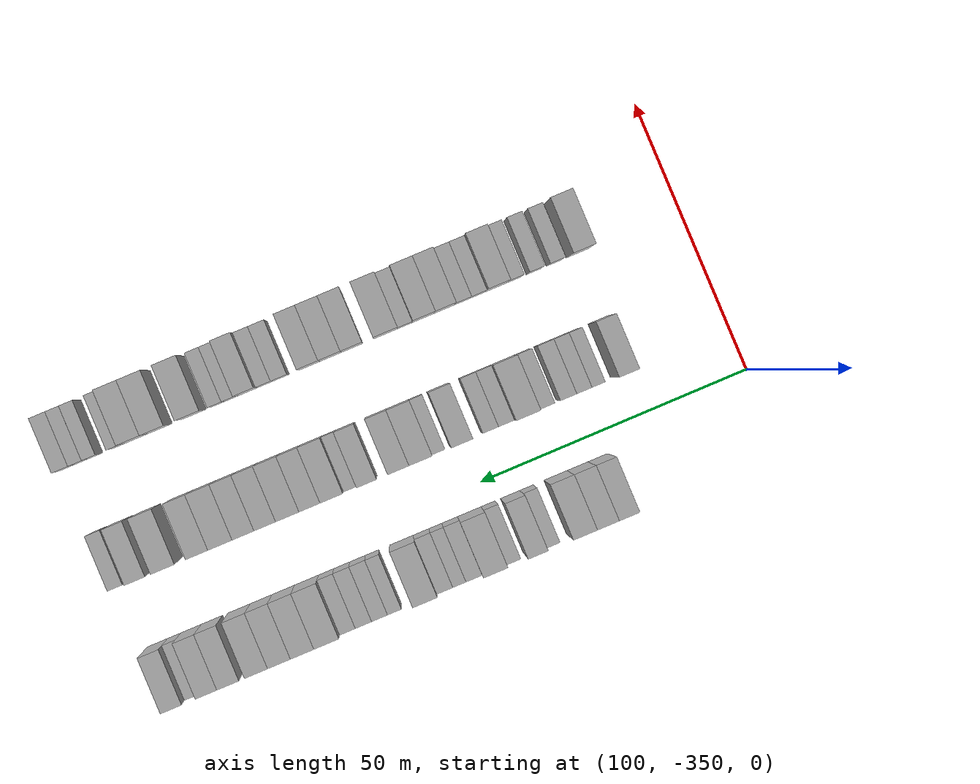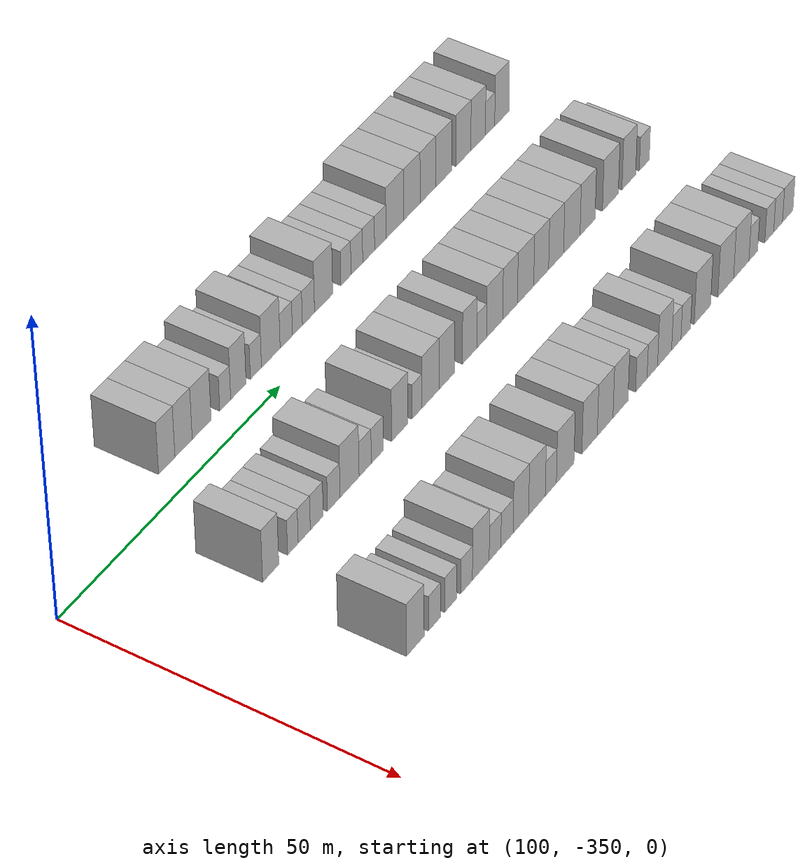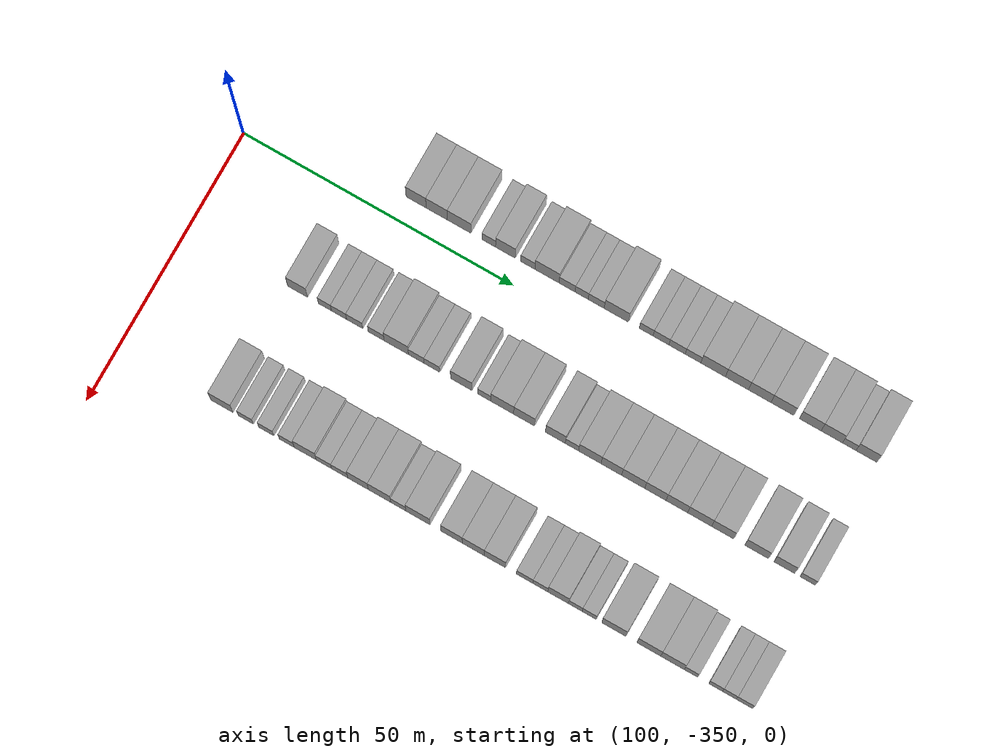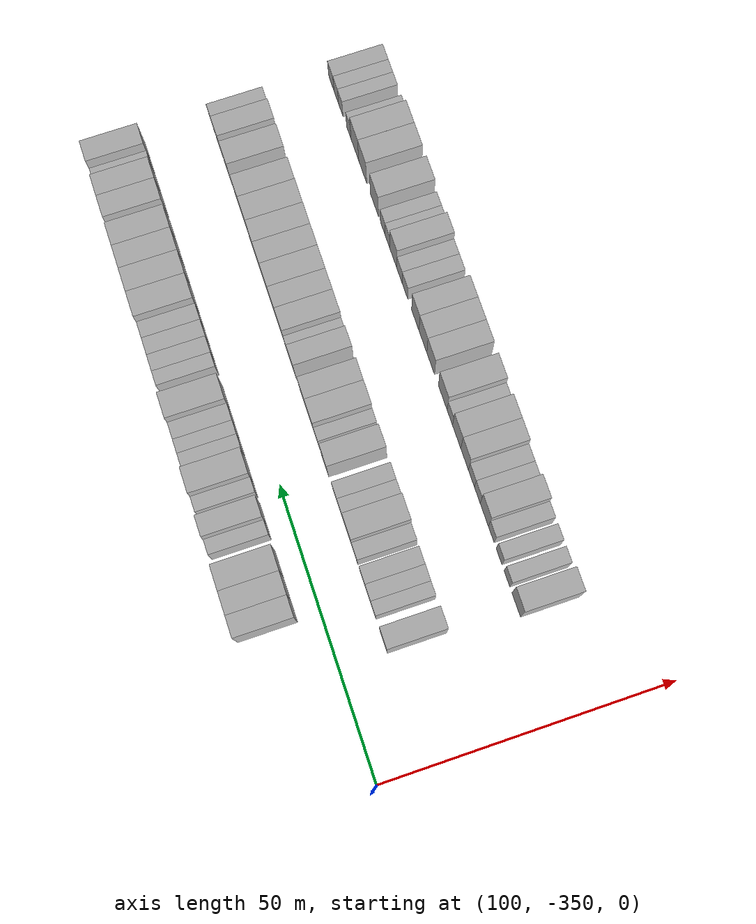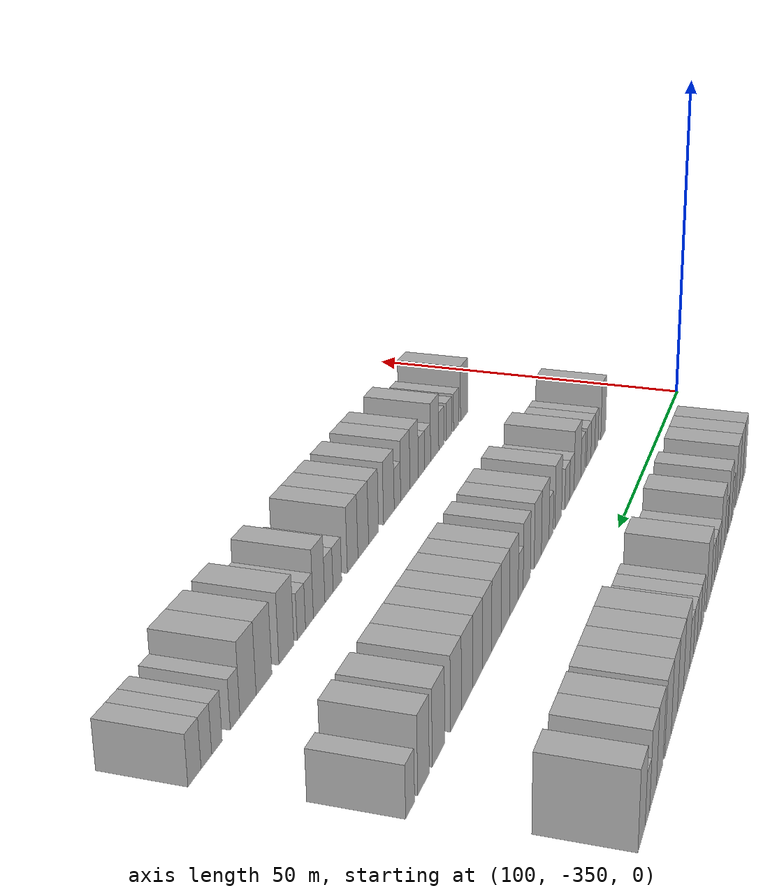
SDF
<sdf version="1.6">
 <world name="default">
  <model name="building_559">
   <static>1</static>
   <pose>91.0000 -320.2926 0 0.000000 0.000000 0.000000</pose>
   <link name="link">
    <pose>0 0 4.50 0 0 0</pose>
    <collision name="collision"><geometry><box><size>10.0000 3.7072 9.0000</size></box></geometry></collision>
    <visual name="visual">
     <cast_shadows>0</cast_shadows>
     <geometry><box><size>10.0000 3.7072 9.0000</size></box></geometry>
     <material>
      <script>
       <uri>model://HANNAS_wall/materials/scripts</uri>
       <uri>model://HANNAS_wall/materials/textures</uri>
       <name>vrc/HANNAS_wall</name>
      </script>
     </material>
    </visual>
   </link>
  </model>
  <model name="building_560">
   <static>1</static>
   <pose>91.0000 -316.4711 0 0.000000 0.000000 0.000000</pose>
   <link name="link">
    <pose>0 0 4.50 0 0 0</pose>
    <collision name="collision"><geometry><box><size>10.0000 3.9356 9.0000</size></box></geometry></collision>
    <visual name="visual">
     <cast_shadows>0</cast_shadows>
     <geometry><box><size>10.0000 3.9356 9.0000</size></box></geometry>
     <material>
      <script>
       <uri>model://HANNAS_wall/materials/scripts</uri>
       <uri>model://HANNAS_wall/materials/textures</uri>
       <name>vrc/HANNAS_wall</name>
      </script>
     </material>
    </visual>
   </link>
  </model>
  <model name="building_561">
   <static>1</static>
   <pose>91.0000 -312.3333 0 0.000000 0.000000 0.000000</pose>
   <link name="link">
    <pose>0 0 4.50 0 0 0</pose>
    <collision name="collision"><geometry><box><size>10.0000 4.3401 9.0000</size></box></geometry></collision>
    <visual name="visual">
     <cast_shadows>0</cast_shadows>
     <geometry><box><size>10.0000 4.3401 9.0000</size></box></geometry>
     <material>
      <script>
       <uri>model://HANNAS_wall/materials/scripts</uri>
       <uri>model://HANNAS_wall/materials/textures</uri>
       <name>vrc/HANNAS_wall</name>
      </script>
     </material>
    </visual>
   </link>
  </model>
  <model name="building_562">
   <static>1</static>
   <pose>91.0000 -306.8927 0 0.000000 0.000000 0.000000</pose>
   <link name="link">
    <pose>0 0 3.00 0 0 0</pose>
    <collision name="collision"><geometry><box><size>10.0000 2.5411 6.0000</size></box></geometry></collision>
    <visual name="visual">
     <cast_shadows>0</cast_shadows>
     <geometry><box><size>10.0000 2.5411 6.0000</size></box></geometry>
     <material>
      <script>
       <uri>model://HANNAS_wall/materials/scripts</uri>
       <uri>model://HANNAS_wall/materials/textures</uri>
       <name>vrc/HANNAS_wall</name>
      </script>
     </material>
    </visual>
   </link>
  </model>
  <model name="building_563">
   <static>1</static>
   <pose>91.0000 -303.8097 0 0.000000 0.000000 0.000000</pose>
   <link name="link">
    <pose>0 0 4.50 0 0 0</pose>
    <collision name="collision"><geometry><box><size>10.0000 3.6249 9.0000</size></box></geometry></collision>
    <visual name="visual">
     <cast_shadows>0</cast_shadows>
     <geometry><box><size>10.0000 3.6249 9.0000</size></box></geometry>
     <material>
      <script>
       <uri>model://HANNAS_wall/materials/scripts</uri>
       <uri>model://HANNAS_wall/materials/textures</uri>
       <name>vrc/HANNAS_wall</name>
      </script>
     </material>
    </visual>
   </link>
  </model>
  <model name="building_564">
   <static>1</static>
   <pose>91.0000 -299.6815 0 0.000000 0.000000 0.000000</pose>
   <link name="link">
    <pose>0 0 3.00 0 0 0</pose>
    <collision name="collision"><geometry><box><size>10.0000 2.6316 6.0000</size></box></geometry></collision>
    <visual name="visual">
     <cast_shadows>0</cast_shadows>
     <geometry><box><size>10.0000 2.6316 6.0000</size></box></geometry>
     <material>
      <script>
       <uri>model://HANNAS_wall/materials/scripts</uri>
       <uri>model://HANNAS_wall/materials/textures</uri>
       <name>vrc/HANNAS_wall</name>
      </script>
     </material>
    </visual>
   </link>
  </model>
  <model name="building_565">
   <static>1</static>
   <pose>91.0000 -296.1436 0 0.000000 0.000000 0.000000</pose>
   <link name="link">
    <pose>0 0 4.50 0 0 0</pose>
    <collision name="collision"><geometry><box><size>10.0000 4.4441 9.0000</size></box></geometry></collision>
    <visual name="visual">
     <cast_shadows>0</cast_shadows>
     <geometry><box><size>10.0000 4.4441 9.0000</size></box></geometry>
     <material>
      <script>
       <uri>model://HANNAS_wall/materials/scripts</uri>
       <uri>model://HANNAS_wall/materials/textures</uri>
       <name>vrc/HANNAS_wall</name>
      </script>
     </material>
    </visual>
   </link>
  </model>
  <model name="building_566">
   <static>1</static>
   <pose>91.0000 -292.4421 0 0.000000 0.000000 0.000000</pose>
   <link name="link">
    <pose>0 0 3.00 0 0 0</pose>
    <collision name="collision"><geometry><box><size>10.0000 2.9590 6.0000</size></box></geometry></collision>
    <visual name="visual">
     <cast_shadows>0</cast_shadows>
     <geometry><box><size>10.0000 2.9590 6.0000</size></box></geometry>
     <material>
      <script>
       <uri>model://HANNAS_wall/materials/scripts</uri>
       <uri>model://HANNAS_wall/materials/textures</uri>
       <name>vrc/HANNAS_wall</name>
      </script>
     </material>
    </visual>
   </link>
  </model>
  <model name="building_567">
   <static>1</static>
   <pose>91.0000 -289.7592 0 0.000000 0.000000 0.000000</pose>
   <link name="link">
    <pose>0 0 3.00 0 0 0</pose>
    <collision name="collision"><geometry><box><size>10.0000 2.4067 6.0000</size></box></geometry></collision>
    <visual name="visual">
     <cast_shadows>0</cast_shadows>
     <geometry><box><size>10.0000 2.4067 6.0000</size></box></geometry>
     <material>
      <script>
       <uri>model://HANNAS_wall/materials/scripts</uri>
       <uri>model://HANNAS_wall/materials/textures</uri>
       <name>vrc/HANNAS_wall</name>
      </script>
     </material>
    </visual>
   </link>
  </model>
  <model name="building_568">
   <static>1</static>
   <pose>91.0000 -287.0844 0 0.000000 0.000000 0.000000</pose>
   <link name="link">
    <pose>0 0 3.00 0 0 0</pose>
    <collision name="collision"><geometry><box><size>10.0000 2.9431 6.0000</size></box></geometry></collision>
    <visual name="visual">
     <cast_shadows>0</cast_shadows>
     <geometry><box><size>10.0000 2.9431 6.0000</size></box></geometry>
     <material>
      <script>
       <uri>model://HANNAS_wall/materials/scripts</uri>
       <uri>model://HANNAS_wall/materials/textures</uri>
       <name>vrc/HANNAS_wall</name>
      </script>
     </material>
    </visual>
   </link>
  </model>
  <model name="building_569">
   <static>1</static>
   <pose>91.0000 -283.3827 0 0.000000 0.000000 0.000000</pose>
   <link name="link">
    <pose>0 0 4.50 0 0 0</pose>
    <collision name="collision"><geometry><box><size>10.0000 4.4601 9.0000</size></box></geometry></collision>
    <visual name="visual">
     <cast_shadows>0</cast_shadows>
     <geometry><box><size>10.0000 4.4601 9.0000</size></box></geometry>
     <material>
      <script>
       <uri>model://HANNAS_wall/materials/scripts</uri>
       <uri>model://HANNAS_wall/materials/textures</uri>
       <name>vrc/HANNAS_wall</name>
      </script>
     </material>
    </visual>
   </link>
  </model>
  <model name="building_570">
   <static>1</static>
   <pose>91.0000 -277.8839 0 0.000000 0.000000 0.000000</pose>
   <link name="link">
    <pose>0 0 3.00 0 0 0</pose>
    <collision name="collision"><geometry><box><size>10.0000 2.5376 6.0000</size></box></geometry></collision>
    <visual name="visual">
     <cast_shadows>0</cast_shadows>
     <geometry><box><size>10.0000 2.5376 6.0000</size></box></geometry>
     <material>
      <script>
       <uri>model://HANNAS_wall/materials/scripts</uri>
       <uri>model://HANNAS_wall/materials/textures</uri>
       <name>vrc/HANNAS_wall</name>
      </script>
     </material>
    </visual>
   </link>
  </model>
  <model name="building_571">
   <static>1</static>
   <pose>91.0000 -275.1615 0 0.000000 0.000000 0.000000</pose>
   <link name="link">
    <pose>0 0 3.00 0 0 0</pose>
    <collision name="collision"><geometry><box><size>10.0000 2.9071 6.0000</size></box></geometry></collision>
    <visual name="visual">
     <cast_shadows>0</cast_shadows>
     <geometry><box><size>10.0000 2.9071 6.0000</size></box></geometry>
     <material>
      <script>
       <uri>model://HANNAS_wall/materials/scripts</uri>
       <uri>model://HANNAS_wall/materials/textures</uri>
       <name>vrc/HANNAS_wall</name>
      </script>
     </material>
    </visual>
   </link>
  </model>
  <model name="building_572">
   <static>1</static>
   <pose>91.0000 -272.2147 0 0.000000 0.000000 0.000000</pose>
   <link name="link">
    <pose>0 0 3.00 0 0 0</pose>
    <collision name="collision"><geometry><box><size>10.0000 2.9865 6.0000</size></box></geometry></collision>
    <visual name="visual">
     <cast_shadows>0</cast_shadows>
     <geometry><box><size>10.0000 2.9865 6.0000</size></box></geometry>
     <material>
      <script>
       <uri>model://HANNAS_wall/materials/scripts</uri>
       <uri>model://HANNAS_wall/materials/textures</uri>
       <name>vrc/HANNAS_wall</name>
      </script>
     </material>
    </visual>
   </link>
  </model>
  <model name="building_573">
   <static>1</static>
   <pose>91.0000 -269.2798 0 0.000000 0.000000 0.000000</pose>
   <link name="link">
    <pose>0 0 3.00 0 0 0</pose>
    <collision name="collision"><geometry><box><size>10.0000 2.8832 6.0000</size></box></geometry></collision>
    <visual name="visual">
     <cast_shadows>0</cast_shadows>
     <geometry><box><size>10.0000 2.8832 6.0000</size></box></geometry>
     <material>
      <script>
       <uri>model://HANNAS_wall/materials/scripts</uri>
       <uri>model://HANNAS_wall/materials/textures</uri>
       <name>vrc/HANNAS_wall</name>
      </script>
     </material>
    </visual>
   </link>
  </model>
  <model name="building_574">
   <static>1</static>
   <pose>91.0000 -265.5908 0 0.000000 0.000000 0.000000</pose>
   <link name="link">
    <pose>0 0 4.50 0 0 0</pose>
    <collision name="collision"><geometry><box><size>10.0000 4.4948 9.0000</size></box></geometry></collision>
    <visual name="visual">
     <cast_shadows>0</cast_shadows>
     <geometry><box><size>10.0000 4.4948 9.0000</size></box></geometry>
     <material>
      <script>
       <uri>model://HANNAS_wall/materials/scripts</uri>
       <uri>model://HANNAS_wall/materials/textures</uri>
       <name>vrc/HANNAS_wall</name>
      </script>
     </material>
    </visual>
   </link>
  </model>
  <model name="building_575">
   <static>1</static>
   <pose>91.0000 -261.2295 0 0.000000 0.000000 0.000000</pose>
   <link name="link">
    <pose>0 0 4.50 0 0 0</pose>
    <collision name="collision"><geometry><box><size>10.0000 4.2278 9.0000</size></box></geometry></collision>
    <visual name="visual">
     <cast_shadows>0</cast_shadows>
     <geometry><box><size>10.0000 4.2278 9.0000</size></box></geometry>
     <material>
      <script>
       <uri>model://HANNAS_wall/materials/scripts</uri>
       <uri>model://HANNAS_wall/materials/textures</uri>
       <name>vrc/HANNAS_wall</name>
      </script>
     </material>
    </visual>
   </link>
  </model>
  <model name="building_576">
   <static>1</static>
   <pose>91.0000 -257.0610 0 0.000000 0.000000 0.000000</pose>
   <link name="link">
    <pose>0 0 4.50 0 0 0</pose>
    <collision name="collision"><geometry><box><size>10.0000 4.1092 9.0000</size></box></geometry></collision>
    <visual name="visual">
     <cast_shadows>0</cast_shadows>
     <geometry><box><size>10.0000 4.1092 9.0000</size></box></geometry>
     <material>
      <script>
       <uri>model://HANNAS_wall/materials/scripts</uri>
       <uri>model://HANNAS_wall/materials/textures</uri>
       <name>vrc/HANNAS_wall</name>
      </script>
     </material>
    </visual>
   </link>
  </model>
  <model name="building_577">
   <static>1</static>
   <pose>91.0000 -252.9128 0 0.000000 0.000000 0.000000</pose>
   <link name="link">
    <pose>0 0 4.50 0 0 0</pose>
    <collision name="collision"><geometry><box><size>10.0000 4.1872 9.0000</size></box></geometry></collision>
    <visual name="visual">
     <cast_shadows>0</cast_shadows>
     <geometry><box><size>10.0000 4.1872 9.0000</size></box></geometry>
     <material>
      <script>
       <uri>model://HANNAS_wall/materials/scripts</uri>
       <uri>model://HANNAS_wall/materials/textures</uri>
       <name>vrc/HANNAS_wall</name>
      </script>
     </material>
    </visual>
   </link>
  </model>
  <model name="building_578">
   <static>1</static>
   <pose>91.0000 -247.8336 0 0.000000 0.000000 0.000000</pose>
   <link name="link">
    <pose>0 0 4.50 0 0 0</pose>
    <collision name="collision"><geometry><box><size>10.0000 3.9711 9.0000</size></box></geometry></collision>
    <visual name="visual">
     <cast_shadows>0</cast_shadows>
     <geometry><box><size>10.0000 3.9711 9.0000</size></box></geometry>
     <material>
      <script>
       <uri>model://HANNAS_wall/materials/scripts</uri>
       <uri>model://HANNAS_wall/materials/textures</uri>
       <name>vrc/HANNAS_wall</name>
      </script>
     </material>
    </visual>
   </link>
  </model>
  <model name="building_579">
   <static>1</static>
   <pose>91.0000 -243.9036 0 0.000000 0.000000 0.000000</pose>
   <link name="link">
    <pose>0 0 4.50 0 0 0</pose>
    <collision name="collision"><geometry><box><size>10.0000 3.8889 9.0000</size></box></geometry></collision>
    <visual name="visual">
     <cast_shadows>0</cast_shadows>
     <geometry><box><size>10.0000 3.8889 9.0000</size></box></geometry>
     <material>
      <script>
       <uri>model://HANNAS_wall/materials/scripts</uri>
       <uri>model://HANNAS_wall/materials/textures</uri>
       <name>vrc/HANNAS_wall</name>
      </script>
     </material>
    </visual>
   </link>
  </model>
  <model name="building_580">
   <static>1</static>
   <pose>91.0000 -240.7203 0 0.000000 0.000000 0.000000</pose>
   <link name="link">
    <pose>0 0 3.00 0 0 0</pose>
    <collision name="collision"><geometry><box><size>10.0000 2.4777 6.0000</size></box></geometry></collision>
    <visual name="visual">
     <cast_shadows>0</cast_shadows>
     <geometry><box><size>10.0000 2.4777 6.0000</size></box></geometry>
     <material>
      <script>
       <uri>model://HANNAS_wall/materials/scripts</uri>
       <uri>model://HANNAS_wall/materials/textures</uri>
       <name>vrc/HANNAS_wall</name>
      </script>
     </material>
    </visual>
   </link>
  </model>
  <model name="building_581">
   <static>1</static>
   <pose>91.0000 -237.5704 0 0.000000 0.000000 0.000000</pose>
   <link name="link">
    <pose>0 0 4.50 0 0 0</pose>
    <collision name="collision"><geometry><box><size>10.0000 3.8223 9.0000</size></box></geometry></collision>
    <visual name="visual">
     <cast_shadows>0</cast_shadows>
     <geometry><box><size>10.0000 3.8223 9.0000</size></box></geometry>
     <material>
      <script>
       <uri>model://HANNAS_wall/materials/scripts</uri>
       <uri>model://HANNAS_wall/materials/textures</uri>
       <name>vrc/HANNAS_wall</name>
      </script>
     </material>
    </visual>
   </link>
  </model>
  <model name="building_744">
   <static>1</static>
   <pose>113.0000 -329.5318 0 0.000000 0.000000 0.000000</pose>
   <link name="link">
    <pose>0 0 4.50 0 0 0</pose>
    <collision name="collision"><geometry><box><size>10.0000 3.6699 9.0000</size></box></geometry></collision>
    <visual name="visual">
     <cast_shadows>0</cast_shadows>
     <geometry><box><size>10.0000 3.6699 9.0000</size></box></geometry>
     <material>
      <script>
       <uri>model://HANNAS_wall/materials/scripts</uri>
       <uri>model://HANNAS_wall/materials/textures</uri>
       <name>vrc/HANNAS_wall</name>
      </script>
     </material>
    </visual>
   </link>
  </model>
  <model name="building_745">
   <static>1</static>
   <pose>113.0000 -324.4861 0 0.000000 0.000000 0.000000</pose>
   <link name="link">
    <pose>0 0 3.00 0 0 0</pose>
    <collision name="collision"><geometry><box><size>10.0000 2.4213 6.0000</size></box></geometry></collision>
    <visual name="visual">
     <cast_shadows>0</cast_shadows>
     <geometry><box><size>10.0000 2.4213 6.0000</size></box></geometry>
     <material>
      <script>
       <uri>model://HANNAS_wall/materials/scripts</uri>
       <uri>model://HANNAS_wall/materials/textures</uri>
       <name>vrc/HANNAS_wall</name>
      </script>
     </material>
    </visual>
   </link>
  </model>
  <model name="building_746">
   <static>1</static>
   <pose>113.0000 -321.8822 0 0.000000 0.000000 0.000000</pose>
   <link name="link">
    <pose>0 0 3.00 0 0 0</pose>
    <collision name="collision"><geometry><box><size>10.0000 2.7865 6.0000</size></box></geometry></collision>
    <visual name="visual">
     <cast_shadows>0</cast_shadows>
     <geometry><box><size>10.0000 2.7865 6.0000</size></box></geometry>
     <material>
      <script>
       <uri>model://HANNAS_wall/materials/scripts</uri>
       <uri>model://HANNAS_wall/materials/textures</uri>
       <name>vrc/HANNAS_wall</name>
      </script>
     </material>
    </visual>
   </link>
  </model>
  <model name="building_747">
   <static>1</static>
   <pose>113.0000 -318.9895 0 0.000000 0.000000 0.000000</pose>
   <link name="link">
    <pose>0 0 3.00 0 0 0</pose>
    <collision name="collision"><geometry><box><size>10.0000 2.9990 6.0000</size></box></geometry></collision>
    <visual name="visual">
     <cast_shadows>0</cast_shadows>
     <geometry><box><size>10.0000 2.9990 6.0000</size></box></geometry>
     <material>
      <script>
       <uri>model://HANNAS_wall/materials/scripts</uri>
       <uri>model://HANNAS_wall/materials/textures</uri>
       <name>vrc/HANNAS_wall</name>
      </script>
     </material>
    </visual>
   </link>
  </model>
  <model name="building_748">
   <static>1</static>
   <pose>113.0000 -315.0239 0 0.000000 0.000000 0.000000</pose>
   <link name="link">
    <pose>0 0 3.00 0 0 0</pose>
    <collision name="collision"><geometry><box><size>10.0000 2.9321 6.0000</size></box></geometry></collision>
    <visual name="visual">
     <cast_shadows>0</cast_shadows>
     <geometry><box><size>10.0000 2.9321 6.0000</size></box></geometry>
     <material>
      <script>
       <uri>model://HANNAS_wall/materials/scripts</uri>
       <uri>model://HANNAS_wall/materials/textures</uri>
       <name>vrc/HANNAS_wall</name>
      </script>
     </material>
    </visual>
   </link>
  </model>
  <model name="building_749">
   <static>1</static>
   <pose>113.0000 -311.3188 0 0.000000 0.000000 0.000000</pose>
   <link name="link">
    <pose>0 0 4.50 0 0 0</pose>
    <collision name="collision"><geometry><box><size>10.0000 4.4782 9.0000</size></box></geometry></collision>
    <visual name="visual">
     <cast_shadows>0</cast_shadows>
     <geometry><box><size>10.0000 4.4782 9.0000</size></box></geometry>
     <material>
      <script>
       <uri>model://HANNAS_wall/materials/scripts</uri>
       <uri>model://HANNAS_wall/materials/textures</uri>
       <name>vrc/HANNAS_wall</name>
      </script>
     </material>
    </visual>
   </link>
  </model>
  <model name="building_750">
   <static>1</static>
   <pose>113.0000 -307.6282 0 0.000000 0.000000 0.000000</pose>
   <link name="link">
    <pose>0 0 3.00 0 0 0</pose>
    <collision name="collision"><geometry><box><size>10.0000 2.9029 6.0000</size></box></geometry></collision>
    <visual name="visual">
     <cast_shadows>0</cast_shadows>
     <geometry><box><size>10.0000 2.9029 6.0000</size></box></geometry>
     <material>
      <script>
       <uri>model://HANNAS_wall/materials/scripts</uri>
       <uri>model://HANNAS_wall/materials/textures</uri>
       <name>vrc/HANNAS_wall</name>
      </script>
     </material>
    </visual>
   </link>
  </model>
  <model name="building_751">
   <static>1</static>
   <pose>113.0000 -304.7395 0 0.000000 0.000000 0.000000</pose>
   <link name="link">
    <pose>0 0 3.00 0 0 0</pose>
    <collision name="collision"><geometry><box><size>10.0000 2.8746 6.0000</size></box></geometry></collision>
    <visual name="visual">
     <cast_shadows>0</cast_shadows>
     <geometry><box><size>10.0000 2.8746 6.0000</size></box></geometry>
     <material>
      <script>
       <uri>model://HANNAS_wall/materials/scripts</uri>
       <uri>model://HANNAS_wall/materials/textures</uri>
       <name>vrc/HANNAS_wall</name>
      </script>
     </material>
    </visual>
   </link>
  </model>
  <model name="building_752">
   <static>1</static>
   <pose>113.0000 -299.3362 0 0.000000 0.000000 0.000000</pose>
   <link name="link">
    <pose>0 0 4.50 0 0 0</pose>
    <collision name="collision"><geometry><box><size>10.0000 3.9321 9.0000</size></box></geometry></collision>
    <visual name="visual">
     <cast_shadows>0</cast_shadows>
     <geometry><box><size>10.0000 3.9321 9.0000</size></box></geometry>
     <material>
      <script>
       <uri>model://HANNAS_wall/materials/scripts</uri>
       <uri>model://HANNAS_wall/materials/textures</uri>
       <name>vrc/HANNAS_wall</name>
      </script>
     </material>
    </visual>
   </link>
  </model>
  <model name="building_753">
   <static>1</static>
   <pose>113.0000 -295.1657 0 0.000000 0.000000 0.000000</pose>
   <link name="link">
    <pose>0 0 3.00 0 0 0</pose>
    <collision name="collision"><geometry><box><size>10.0000 2.4090 6.0000</size></box></geometry></collision>
    <visual name="visual">
     <cast_shadows>0</cast_shadows>
     <geometry><box><size>10.0000 2.4090 6.0000</size></box></geometry>
     <material>
      <script>
       <uri>model://HANNAS_wall/materials/scripts</uri>
       <uri>model://HANNAS_wall/materials/textures</uri>
       <name>vrc/HANNAS_wall</name>
      </script>
     </material>
    </visual>
   </link>
  </model>
  <model name="building_754">
   <static>1</static>
   <pose>113.0000 -291.8523 0 0.000000 0.000000 0.000000</pose>
   <link name="link">
    <pose>0 0 4.50 0 0 0</pose>
    <collision name="collision"><geometry><box><size>10.0000 4.2177 9.0000</size></box></geometry></collision>
    <visual name="visual">
     <cast_shadows>0</cast_shadows>
     <geometry><box><size>10.0000 4.2177 9.0000</size></box></geometry>
     <material>
      <script>
       <uri>model://HANNAS_wall/materials/scripts</uri>
       <uri>model://HANNAS_wall/materials/textures</uri>
       <name>vrc/HANNAS_wall</name>
      </script>
     </material>
    </visual>
   </link>
  </model>
  <model name="building_755">
   <static>1</static>
   <pose>113.0000 -287.8174 0 0.000000 0.000000 0.000000</pose>
   <link name="link">
    <pose>0 0 4.50 0 0 0</pose>
    <collision name="collision"><geometry><box><size>10.0000 3.8520 9.0000</size></box></geometry></collision>
    <visual name="visual">
     <cast_shadows>0</cast_shadows>
     <geometry><box><size>10.0000 3.8520 9.0000</size></box></geometry>
     <material>
      <script>
       <uri>model://HANNAS_wall/materials/scripts</uri>
       <uri>model://HANNAS_wall/materials/textures</uri>
       <name>vrc/HANNAS_wall</name>
      </script>
     </material>
    </visual>
   </link>
  </model>
  <model name="building_756">
   <static>1</static>
   <pose>113.0000 -282.0751 0 0.000000 0.000000 0.000000</pose>
   <link name="link">
    <pose>0 0 4.50 0 0 0</pose>
    <collision name="collision"><geometry><box><size>10.0000 3.6327 9.0000</size></box></geometry></collision>
    <visual name="visual">
     <cast_shadows>0</cast_shadows>
     <geometry><box><size>10.0000 3.6327 9.0000</size></box></geometry>
     <material>
      <script>
       <uri>model://HANNAS_wall/materials/scripts</uri>
       <uri>model://HANNAS_wall/materials/textures</uri>
       <name>vrc/HANNAS_wall</name>
      </script>
     </material>
    </visual>
   </link>
  </model>
  <model name="building_757">
   <static>1</static>
   <pose>113.0000 -279.0368 0 0.000000 0.000000 0.000000</pose>
   <link name="link">
    <pose>0 0 3.00 0 0 0</pose>
    <collision name="collision"><geometry><box><size>10.0000 2.4439 6.0000</size></box></geometry></collision>
    <visual name="visual">
     <cast_shadows>0</cast_shadows>
     <geometry><box><size>10.0000 2.4439 6.0000</size></box></geometry>
     <material>
      <script>
       <uri>model://HANNAS_wall/materials/scripts</uri>
       <uri>model://HANNAS_wall/materials/textures</uri>
       <name>vrc/HANNAS_wall</name>
      </script>
     </material>
    </visual>
   </link>
  </model>
  <model name="building_758">
   <static>1</static>
   <pose>113.0000 -275.7574 0 0.000000 0.000000 0.000000</pose>
   <link name="link">
    <pose>0 0 4.50 0 0 0</pose>
    <collision name="collision"><geometry><box><size>10.0000 4.1149 9.0000</size></box></geometry></collision>
    <visual name="visual">
     <cast_shadows>0</cast_shadows>
     <geometry><box><size>10.0000 4.1149 9.0000</size></box></geometry>
     <material>
      <script>
       <uri>model://HANNAS_wall/materials/scripts</uri>
       <uri>model://HANNAS_wall/materials/textures</uri>
       <name>vrc/HANNAS_wall</name>
      </script>
     </material>
    </visual>
   </link>
  </model>
  <model name="building_759">
   <static>1</static>
   <pose>113.0000 -271.8102 0 0.000000 0.000000 0.000000</pose>
   <link name="link">
    <pose>0 0 4.50 0 0 0</pose>
    <collision name="collision"><geometry><box><size>10.0000 3.7796 9.0000</size></box></geometry></collision>
    <visual name="visual">
     <cast_shadows>0</cast_shadows>
     <geometry><box><size>10.0000 3.7796 9.0000</size></box></geometry>
     <material>
      <script>
       <uri>model://HANNAS_wall/materials/scripts</uri>
       <uri>model://HANNAS_wall/materials/textures</uri>
       <name>vrc/HANNAS_wall</name>
      </script>
     </material>
    </visual>
   </link>
  </model>
  <model name="building_760">
   <static>1</static>
   <pose>113.0000 -267.8088 0 0.000000 0.000000 0.000000</pose>
   <link name="link">
    <pose>0 0 4.50 0 0 0</pose>
    <collision name="collision"><geometry><box><size>10.0000 4.2232 9.0000</size></box></geometry></collision>
    <visual name="visual">
     <cast_shadows>0</cast_shadows>
     <geometry><box><size>10.0000 4.2232 9.0000</size></box></geometry>
     <material>
      <script>
       <uri>model://HANNAS_wall/materials/scripts</uri>
       <uri>model://HANNAS_wall/materials/textures</uri>
       <name>vrc/HANNAS_wall</name>
      </script>
     </material>
    </visual>
   </link>
  </model>
  <model name="building_761">
   <static>1</static>
   <pose>113.0000 -263.7494 0 0.000000 0.000000 0.000000</pose>
   <link name="link">
    <pose>0 0 4.50 0 0 0</pose>
    <collision name="collision"><geometry><box><size>10.0000 3.8955 9.0000</size></box></geometry></collision>
    <visual name="visual">
     <cast_shadows>0</cast_shadows>
     <geometry><box><size>10.0000 3.8955 9.0000</size></box></geometry>
     <material>
      <script>
       <uri>model://HANNAS_wall/materials/scripts</uri>
       <uri>model://HANNAS_wall/materials/textures</uri>
       <name>vrc/HANNAS_wall</name>
      </script>
     </material>
    </visual>
   </link>
  </model>
  <model name="building_762">
   <static>1</static>
   <pose>113.0000 -259.8276 0 0.000000 0.000000 0.000000</pose>
   <link name="link">
    <pose>0 0 4.50 0 0 0</pose>
    <collision name="collision"><geometry><box><size>10.0000 3.9480 9.0000</size></box></geometry></collision>
    <visual name="visual">
     <cast_shadows>0</cast_shadows>
     <geometry><box><size>10.0000 3.9480 9.0000</size></box></geometry>
     <material>
      <script>
       <uri>model://HANNAS_wall/materials/scripts</uri>
       <uri>model://HANNAS_wall/materials/textures</uri>
       <name>vrc/HANNAS_wall</name>
      </script>
     </material>
    </visual>
   </link>
  </model>
  <model name="building_763">
   <static>1</static>
   <pose>113.0000 -255.6693 0 0.000000 0.000000 0.000000</pose>
   <link name="link">
    <pose>0 0 4.50 0 0 0</pose>
    <collision name="collision"><geometry><box><size>10.0000 4.3687 9.0000</size></box></geometry></collision>
    <visual name="visual">
     <cast_shadows>0</cast_shadows>
     <geometry><box><size>10.0000 4.3687 9.0000</size></box></geometry>
     <material>
      <script>
       <uri>model://HANNAS_wall/materials/scripts</uri>
       <uri>model://HANNAS_wall/materials/textures</uri>
       <name>vrc/HANNAS_wall</name>
      </script>
     </material>
    </visual>
   </link>
  </model>
  <model name="building_764">
   <static>1</static>
   <pose>113.0000 -251.4635 0 0.000000 0.000000 0.000000</pose>
   <link name="link">
    <pose>0 0 4.50 0 0 0</pose>
    <collision name="collision"><geometry><box><size>10.0000 4.0429 9.0000</size></box></geometry></collision>
    <visual name="visual">
     <cast_shadows>0</cast_shadows>
     <geometry><box><size>10.0000 4.0429 9.0000</size></box></geometry>
     <material>
      <script>
       <uri>model://HANNAS_wall/materials/scripts</uri>
       <uri>model://HANNAS_wall/materials/textures</uri>
       <name>vrc/HANNAS_wall</name>
      </script>
     </material>
    </visual>
   </link>
  </model>
  <model name="building_765">
   <static>1</static>
   <pose>113.0000 -245.2829 0 0.000000 0.000000 0.000000</pose>
   <link name="link">
    <pose>0 0 4.50 0 0 0</pose>
    <collision name="collision"><geometry><box><size>10.0000 4.3183 9.0000</size></box></geometry></collision>
    <visual name="visual">
     <cast_shadows>0</cast_shadows>
     <geometry><box><size>10.0000 4.3183 9.0000</size></box></geometry>
     <material>
      <script>
       <uri>model://HANNAS_wall/materials/scripts</uri>
       <uri>model://HANNAS_wall/materials/textures</uri>
       <name>vrc/HANNAS_wall</name>
      </script>
     </material>
    </visual>
   </link>
  </model>
  <model name="building_766">
   <static>1</static>
   <pose>113.0000 -240.2470 0 0.000000 0.000000 0.000000</pose>
   <link name="link">
    <pose>0 0 4.50 0 0 0</pose>
    <collision name="collision"><geometry><box><size>10.0000 3.7536 9.0000</size></box></geometry></collision>
    <visual name="visual">
     <cast_shadows>0</cast_shadows>
     <geometry><box><size>10.0000 3.7536 9.0000</size></box></geometry>
     <material>
      <script>
       <uri>model://HANNAS_wall/materials/scripts</uri>
       <uri>model://HANNAS_wall/materials/textures</uri>
       <name>vrc/HANNAS_wall</name>
      </script>
     </material>
    </visual>
   </link>
  </model>
  <model name="building_767">
   <static>1</static>
   <pose>113.0000 -235.9892 0 0.000000 0.000000 0.000000</pose>
   <link name="link">
    <pose>0 0 3.00 0 0 0</pose>
    <collision name="collision"><geometry><box><size>10.0000 2.7619 6.0000</size></box></geometry></collision>
    <visual name="visual">
     <cast_shadows>0</cast_shadows>
     <geometry><box><size>10.0000 2.7619 6.0000</size></box></geometry>
     <material>
      <script>
       <uri>model://HANNAS_wall/materials/scripts</uri>
       <uri>model://HANNAS_wall/materials/textures</uri>
       <name>vrc/HANNAS_wall</name>
      </script>
     </material>
    </visual>
   </link>
  </model>
  <model name="building_923">
   <static>1</static>
   <pose>135.0000 -330.7384 0 0.000000 0.000000 0.000000</pose>
   <link name="link">
    <pose>0 0 4.50 0 0 0</pose>
    <collision name="collision"><geometry><box><size>10.0000 4.0728 9.0000</size></box></geometry></collision>
    <visual name="visual">
     <cast_shadows>0</cast_shadows>
     <geometry><box><size>10.0000 4.0728 9.0000</size></box></geometry>
     <material>
      <script>
       <uri>model://HANNAS_wall/materials/scripts</uri>
       <uri>model://HANNAS_wall/materials/textures</uri>
       <name>vrc/HANNAS_wall</name>
      </script>
     </material>
    </visual>
   </link>
  </model>
  <model name="building_924">
   <static>1</static>
   <pose>135.0000 -326.3174 0 0.000000 0.000000 0.000000</pose>
   <link name="link">
    <pose>0 0 3.00 0 0 0</pose>
    <collision name="collision"><geometry><box><size>10.0000 2.7690 6.0000</size></box></geometry></collision>
    <visual name="visual">
     <cast_shadows>0</cast_shadows>
     <geometry><box><size>10.0000 2.7690 6.0000</size></box></geometry>
     <material>
      <script>
       <uri>model://HANNAS_wall/materials/scripts</uri>
       <uri>model://HANNAS_wall/materials/textures</uri>
       <name>vrc/HANNAS_wall</name>
      </script>
     </material>
    </visual>
   </link>
  </model>
  <model name="building_925">
   <static>1</static>
   <pose>135.0000 -322.5414 0 0.000000 0.000000 0.000000</pose>
   <link name="link">
    <pose>0 0 3.00 0 0 0</pose>
    <collision name="collision"><geometry><box><size>10.0000 2.7830 6.0000</size></box></geometry></collision>
    <visual name="visual">
     <cast_shadows>0</cast_shadows>
     <geometry><box><size>10.0000 2.7830 6.0000</size></box></geometry>
     <material>
      <script>
       <uri>model://HANNAS_wall/materials/scripts</uri>
       <uri>model://HANNAS_wall/materials/textures</uri>
       <name>vrc/HANNAS_wall</name>
      </script>
     </material>
    </visual>
   </link>
  </model>
  <model name="building_926">
   <static>1</static>
   <pose>135.0000 -318.7576 0 0.000000 0.000000 0.000000</pose>
   <link name="link">
    <pose>0 0 3.00 0 0 0</pose>
    <collision name="collision"><geometry><box><size>10.0000 2.7847 6.0000</size></box></geometry></collision>
    <visual name="visual">
     <cast_shadows>0</cast_shadows>
     <geometry><box><size>10.0000 2.7847 6.0000</size></box></geometry>
     <material>
      <script>
       <uri>model://HANNAS_wall/materials/scripts</uri>
       <uri>model://HANNAS_wall/materials/textures</uri>
       <name>vrc/HANNAS_wall</name>
      </script>
     </material>
    </visual>
   </link>
  </model>
  <model name="building_927">
   <static>1</static>
   <pose>135.0000 -315.3602 0 0.000000 0.000000 0.000000</pose>
   <link name="link">
    <pose>0 0 4.50 0 0 0</pose>
    <collision name="collision"><geometry><box><size>10.0000 4.0101 9.0000</size></box></geometry></collision>
    <visual name="visual">
     <cast_shadows>0</cast_shadows>
     <geometry><box><size>10.0000 4.0101 9.0000</size></box></geometry>
     <material>
      <script>
       <uri>model://HANNAS_wall/materials/scripts</uri>
       <uri>model://HANNAS_wall/materials/textures</uri>
       <name>vrc/HANNAS_wall</name>
      </script>
     </material>
    </visual>
   </link>
  </model>
  <model name="building_928">
   <static>1</static>
   <pose>135.0000 -311.9376 0 0.000000 0.000000 0.000000</pose>
   <link name="link">
    <pose>0 0 3.00 0 0 0</pose>
    <collision name="collision"><geometry><box><size>10.0000 2.8351 6.0000</size></box></geometry></collision>
    <visual name="visual">
     <cast_shadows>0</cast_shadows>
     <geometry><box><size>10.0000 2.8351 6.0000</size></box></geometry>
     <material>
      <script>
       <uri>model://HANNAS_wall/materials/scripts</uri>
       <uri>model://HANNAS_wall/materials/textures</uri>
       <name>vrc/HANNAS_wall</name>
      </script>
     </material>
    </visual>
   </link>
  </model>
  <model name="building_929">
   <static>1</static>
   <pose>135.0000 -309.0344 0 0.000000 0.000000 0.000000</pose>
   <link name="link">
    <pose>0 0 3.00 0 0 0</pose>
    <collision name="collision"><geometry><box><size>10.0000 2.9714 6.0000</size></box></geometry></collision>
    <visual name="visual">
     <cast_shadows>0</cast_shadows>
     <geometry><box><size>10.0000 2.9714 6.0000</size></box></geometry>
     <material>
      <script>
       <uri>model://HANNAS_wall/materials/scripts</uri>
       <uri>model://HANNAS_wall/materials/textures</uri>
       <name>vrc/HANNAS_wall</name>
      </script>
     </material>
    </visual>
   </link>
  </model>
  <model name="building_930">
   <static>1</static>
   <pose>135.0000 -305.6556 0 0.000000 0.000000 0.000000</pose>
   <link name="link">
    <pose>0 0 4.50 0 0 0</pose>
    <collision name="collision"><geometry><box><size>10.0000 3.7860 9.0000</size></box></geometry></collision>
    <visual name="visual">
     <cast_shadows>0</cast_shadows>
     <geometry><box><size>10.0000 3.7860 9.0000</size></box></geometry>
     <material>
      <script>
       <uri>model://HANNAS_wall/materials/scripts</uri>
       <uri>model://HANNAS_wall/materials/textures</uri>
       <name>vrc/HANNAS_wall</name>
      </script>
     </material>
    </visual>
   </link>
  </model>
  <model name="building_931">
   <static>1</static>
   <pose>135.0000 -301.7085 0 0.000000 0.000000 0.000000</pose>
   <link name="link">
    <pose>0 0 4.50 0 0 0</pose>
    <collision name="collision"><geometry><box><size>10.0000 4.1083 9.0000</size></box></geometry></collision>
    <visual name="visual">
     <cast_shadows>0</cast_shadows>
     <geometry><box><size>10.0000 4.1083 9.0000</size></box></geometry>
     <material>
      <script>
       <uri>model://HANNAS_wall/materials/scripts</uri>
       <uri>model://HANNAS_wall/materials/textures</uri>
       <name>vrc/HANNAS_wall</name>
      </script>
     </material>
    </visual>
   </link>
  </model>
  <model name="building_932">
   <static>1</static>
   <pose>135.0000 -298.2735 0 0.000000 0.000000 0.000000</pose>
   <link name="link">
    <pose>0 0 3.00 0 0 0</pose>
    <collision name="collision"><geometry><box><size>10.0000 2.7617 6.0000</size></box></geometry></collision>
    <visual name="visual">
     <cast_shadows>0</cast_shadows>
     <geometry><box><size>10.0000 2.7617 6.0000</size></box></geometry>
     <material>
      <script>
       <uri>model://HANNAS_wall/materials/scripts</uri>
       <uri>model://HANNAS_wall/materials/textures</uri>
       <name>vrc/HANNAS_wall</name>
      </script>
     </material>
    </visual>
   </link>
  </model>
  <model name="building_933">
   <static>1</static>
   <pose>135.0000 -294.6872 0 0.000000 0.000000 0.000000</pose>
   <link name="link">
    <pose>0 0 4.50 0 0 0</pose>
    <collision name="collision"><geometry><box><size>10.0000 4.4110 9.0000</size></box></geometry></collision>
    <visual name="visual">
     <cast_shadows>0</cast_shadows>
     <geometry><box><size>10.0000 4.4110 9.0000</size></box></geometry>
     <material>
      <script>
       <uri>model://HANNAS_wall/materials/scripts</uri>
       <uri>model://HANNAS_wall/materials/textures</uri>
       <name>vrc/HANNAS_wall</name>
      </script>
     </material>
    </visual>
   </link>
  </model>
  <model name="building_934">
   <static>1</static>
   <pose>135.0000 -288.5267 0 0.000000 0.000000 0.000000</pose>
   <link name="link">
    <pose>0 0 4.50 0 0 0</pose>
    <collision name="collision"><geometry><box><size>10.0000 3.9100 9.0000</size></box></geometry></collision>
    <visual name="visual">
     <cast_shadows>0</cast_shadows>
     <geometry><box><size>10.0000 3.9100 9.0000</size></box></geometry>
     <material>
      <script>
       <uri>model://HANNAS_wall/materials/scripts</uri>
       <uri>model://HANNAS_wall/materials/textures</uri>
       <name>vrc/HANNAS_wall</name>
      </script>
     </material>
    </visual>
   </link>
  </model>
  <model name="building_935">
   <static>1</static>
   <pose>135.0000 -284.5555 0 0.000000 0.000000 0.000000</pose>
   <link name="link">
    <pose>0 0 4.50 0 0 0</pose>
    <collision name="collision"><geometry><box><size>10.0000 4.0322 9.0000</size></box></geometry></collision>
    <visual name="visual">
     <cast_shadows>0</cast_shadows>
     <geometry><box><size>10.0000 4.0322 9.0000</size></box></geometry>
     <material>
      <script>
       <uri>model://HANNAS_wall/materials/scripts</uri>
       <uri>model://HANNAS_wall/materials/textures</uri>
       <name>vrc/HANNAS_wall</name>
      </script>
     </material>
    </visual>
   </link>
  </model>
  <model name="building_936">
   <static>1</static>
   <pose>135.0000 -280.5998 0 0.000000 0.000000 0.000000</pose>
   <link name="link">
    <pose>0 0 4.50 0 0 0</pose>
    <collision name="collision"><geometry><box><size>10.0000 3.8792 9.0000</size></box></geometry></collision>
    <visual name="visual">
     <cast_shadows>0</cast_shadows>
     <geometry><box><size>10.0000 3.8792 9.0000</size></box></geometry>
     <material>
      <script>
       <uri>model://HANNAS_wall/materials/scripts</uri>
       <uri>model://HANNAS_wall/materials/textures</uri>
       <name>vrc/HANNAS_wall</name>
      </script>
     </material>
    </visual>
   </link>
  </model>
  <model name="building_937">
   <static>1</static>
   <pose>135.0000 -275.1688 0 0.000000 0.000000 0.000000</pose>
   <link name="link">
    <pose>0 0 3.00 0 0 0</pose>
    <collision name="collision"><geometry><box><size>10.0000 2.9828 6.0000</size></box></geometry></collision>
    <visual name="visual">
     <cast_shadows>0</cast_shadows>
     <geometry><box><size>10.0000 2.9828 6.0000</size></box></geometry>
     <material>
      <script>
       <uri>model://HANNAS_wall/materials/scripts</uri>
       <uri>model://HANNAS_wall/materials/textures</uri>
       <name>vrc/HANNAS_wall</name>
      </script>
     </material>
    </visual>
   </link>
  </model>
  <model name="building_938">
   <static>1</static>
   <pose>135.0000 -272.2974 0 0.000000 0.000000 0.000000</pose>
   <link name="link">
    <pose>0 0 3.00 0 0 0</pose>
    <collision name="collision"><geometry><box><size>10.0000 2.7600 6.0000</size></box></geometry></collision>
    <visual name="visual">
     <cast_shadows>0</cast_shadows>
     <geometry><box><size>10.0000 2.7600 6.0000</size></box></geometry>
     <material>
      <script>
       <uri>model://HANNAS_wall/materials/scripts</uri>
       <uri>model://HANNAS_wall/materials/textures</uri>
       <name>vrc/HANNAS_wall</name>
      </script>
     </material>
    </visual>
   </link>
  </model>
  <model name="building_939">
   <static>1</static>
   <pose>135.0000 -269.0389 0 0.000000 0.000000 0.000000</pose>
   <link name="link">
    <pose>0 0 4.50 0 0 0</pose>
    <collision name="collision"><geometry><box><size>10.0000 3.7570 9.0000</size></box></geometry></collision>
    <visual name="visual">
     <cast_shadows>0</cast_shadows>
     <geometry><box><size>10.0000 3.7570 9.0000</size></box></geometry>
     <material>
      <script>
       <uri>model://HANNAS_wall/materials/scripts</uri>
       <uri>model://HANNAS_wall/materials/textures</uri>
       <name>vrc/HANNAS_wall</name>
      </script>
     </material>
    </visual>
   </link>
  </model>
  <model name="building_940">
   <static>1</static>
   <pose>135.0000 -265.9163 0 0.000000 0.000000 0.000000</pose>
   <link name="link">
    <pose>0 0 3.00 0 0 0</pose>
    <collision name="collision"><geometry><box><size>10.0000 2.4882 6.0000</size></box></geometry></collision>
    <visual name="visual">
     <cast_shadows>0</cast_shadows>
     <geometry><box><size>10.0000 2.4882 6.0000</size></box></geometry>
     <material>
      <script>
       <uri>model://HANNAS_wall/materials/scripts</uri>
       <uri>model://HANNAS_wall/materials/textures</uri>
       <name>vrc/HANNAS_wall</name>
      </script>
     </material>
    </visual>
   </link>
  </model>
  <model name="building_941">
   <static>1</static>
   <pose>135.0000 -263.3873 0 0.000000 0.000000 0.000000</pose>
   <link name="link">
    <pose>0 0 3.00 0 0 0</pose>
    <collision name="collision"><geometry><box><size>10.0000 2.5697 6.0000</size></box></geometry></collision>
    <visual name="visual">
     <cast_shadows>0</cast_shadows>
     <geometry><box><size>10.0000 2.5697 6.0000</size></box></geometry>
     <material>
      <script>
       <uri>model://HANNAS_wall/materials/scripts</uri>
       <uri>model://HANNAS_wall/materials/textures</uri>
       <name>vrc/HANNAS_wall</name>
      </script>
     </material>
    </visual>
   </link>
  </model>
  <model name="building_942">
   <static>1</static>
   <pose>135.0000 -258.8900 0 0.000000 0.000000 0.000000</pose>
   <link name="link">
    <pose>0 0 4.50 0 0 0</pose>
    <collision name="collision"><geometry><box><size>10.0000 4.4250 9.0000</size></box></geometry></collision>
    <visual name="visual">
     <cast_shadows>0</cast_shadows>
     <geometry><box><size>10.0000 4.4250 9.0000</size></box></geometry>
     <material>
      <script>
       <uri>model://HANNAS_wall/materials/scripts</uri>
       <uri>model://HANNAS_wall/materials/textures</uri>
       <name>vrc/HANNAS_wall</name>
      </script>
     </material>
    </visual>
   </link>
  </model>
  <model name="building_943">
   <static>1</static>
   <pose>135.0000 -252.5122 0 0.000000 0.000000 0.000000</pose>
   <link name="link">
    <pose>0 0 4.50 0 0 0</pose>
    <collision name="collision"><geometry><box><size>10.0000 4.3305 9.0000</size></box></geometry></collision>
    <visual name="visual">
     <cast_shadows>0</cast_shadows>
     <geometry><box><size>10.0000 4.3305 9.0000</size></box></geometry>
     <material>
      <script>
       <uri>model://HANNAS_wall/materials/scripts</uri>
       <uri>model://HANNAS_wall/materials/textures</uri>
       <name>vrc/HANNAS_wall</name>
      </script>
     </material>
    </visual>
   </link>
  </model>
  <model name="building_944">
   <static>1</static>
   <pose>135.0000 -248.2140 0 0.000000 0.000000 0.000000</pose>
   <link name="link">
    <pose>0 0 4.50 0 0 0</pose>
    <collision name="collision"><geometry><box><size>10.0000 4.2658 9.0000</size></box></geometry></collision>
    <visual name="visual">
     <cast_shadows>0</cast_shadows>
     <geometry><box><size>10.0000 4.2658 9.0000</size></box></geometry>
     <material>
      <script>
       <uri>model://HANNAS_wall/materials/scripts</uri>
       <uri>model://HANNAS_wall/materials/textures</uri>
       <name>vrc/HANNAS_wall</name>
      </script>
     </material>
    </visual>
   </link>
  </model>
  <model name="building_945">
   <static>1</static>
   <pose>135.0000 -244.8549 0 0.000000 0.000000 0.000000</pose>
   <link name="link">
    <pose>0 0 3.00 0 0 0</pose>
    <collision name="collision"><geometry><box><size>10.0000 2.4525 6.0000</size></box></geometry></collision>
    <visual name="visual">
     <cast_shadows>0</cast_shadows>
     <geometry><box><size>10.0000 2.4525 6.0000</size></box></geometry>
     <material>
      <script>
       <uri>model://HANNAS_wall/materials/scripts</uri>
       <uri>model://HANNAS_wall/materials/textures</uri>
       <name>vrc/HANNAS_wall</name>
      </script>
     </material>
    </visual>
   </link>
  </model>
  <model name="building_946">
   <static>1</static>
   <pose>135.0000 -240.3763 0 0.000000 0.000000 0.000000</pose>
   <link name="link">
    <pose>0 0 3.00 0 0 0</pose>
    <collision name="collision"><geometry><box><size>10.0000 2.5047 6.0000</size></box></geometry></collision>
    <visual name="visual">
     <cast_shadows>0</cast_shadows>
     <geometry><box><size>10.0000 2.5047 6.0000</size></box></geometry>
     <material>
      <script>
       <uri>model://HANNAS_wall/materials/scripts</uri>
       <uri>model://HANNAS_wall/materials/textures</uri>
       <name>vrc/HANNAS_wall</name>
      </script>
     </material>
    </visual>
   </link>
  </model>
  <model name="building_947">
   <static>1</static>
   <pose>135.0000 -237.8751 0 0.000000 0.000000 0.000000</pose>
   <link name="link">
    <pose>0 0 3.00 0 0 0</pose>
    <collision name="collision"><geometry><box><size>10.0000 2.4975 6.0000</size></box></geometry></collision>
    <visual name="visual">
     <cast_shadows>0</cast_shadows>
     <geometry><box><size>10.0000 2.4975 6.0000</size></box></geometry>
     <material>
      <script>
       <uri>model://HANNAS_wall/materials/scripts</uri>
       <uri>model://HANNAS_wall/materials/textures</uri>
       <name>vrc/HANNAS_wall</name>
      </script>
     </material>
    </visual>
   </link>
  </model>
  <model name="building_948">
   <static>1</static>
   <pose>135.0000 -235.1297 0 0.000000 0.000000 0.000000</pose>
   <link name="link">
    <pose>0 0 3.00 0 0 0</pose>
    <collision name="collision"><geometry><box><size>10.0000 2.9934 6.0000</size></box></geometry></collision>
    <visual name="visual">
     <cast_shadows>0</cast_shadows>
     <geometry><box><size>10.0000 2.9934 6.0000</size></box></geometry>
     <material>
      <script>
       <uri>model://HANNAS_wall/materials/scripts</uri>
       <uri>model://HANNAS_wall/materials/textures</uri>
       <name>vrc/HANNAS_wall</name>
      </script>
     </material>
    </visual>
   </link>
  </model>
 </world>
</sdf>
